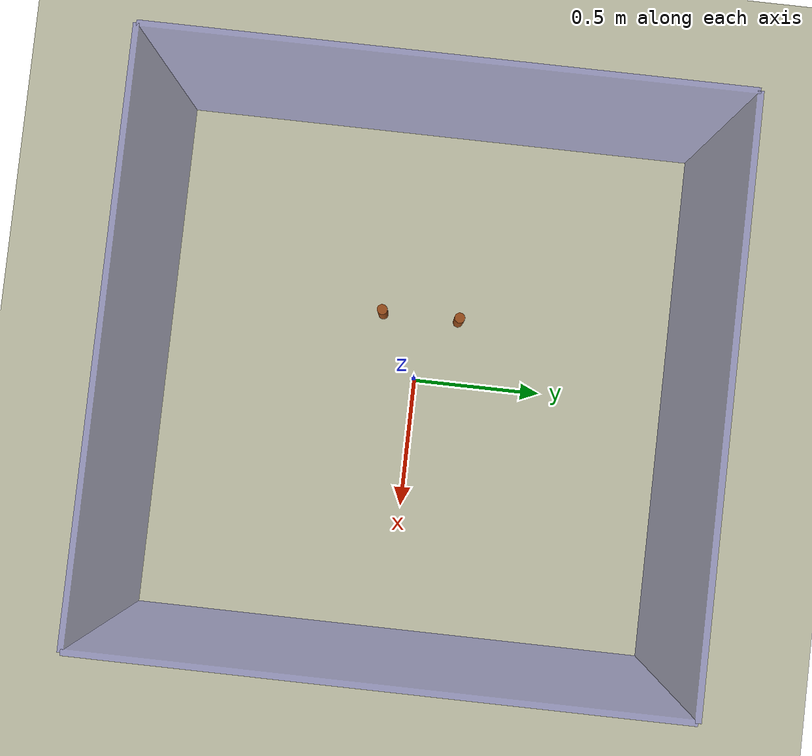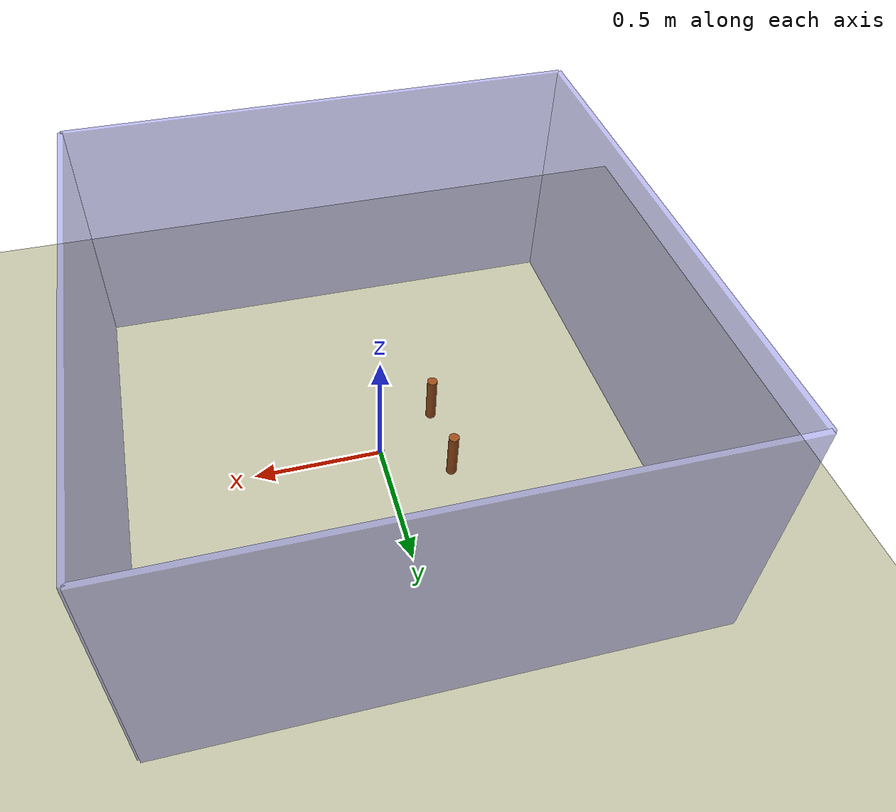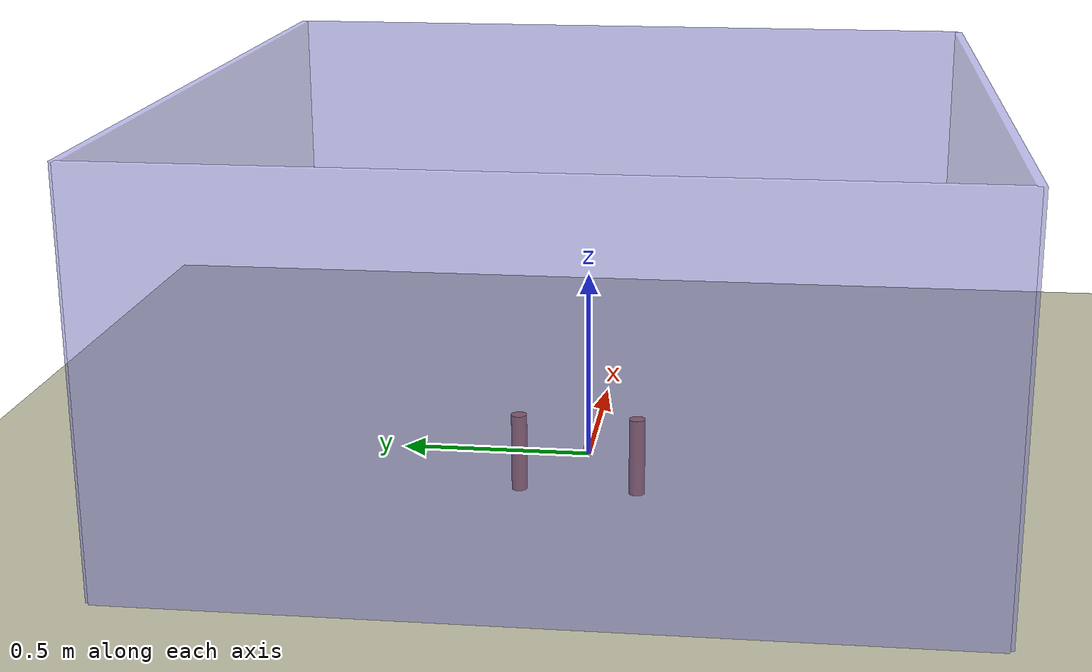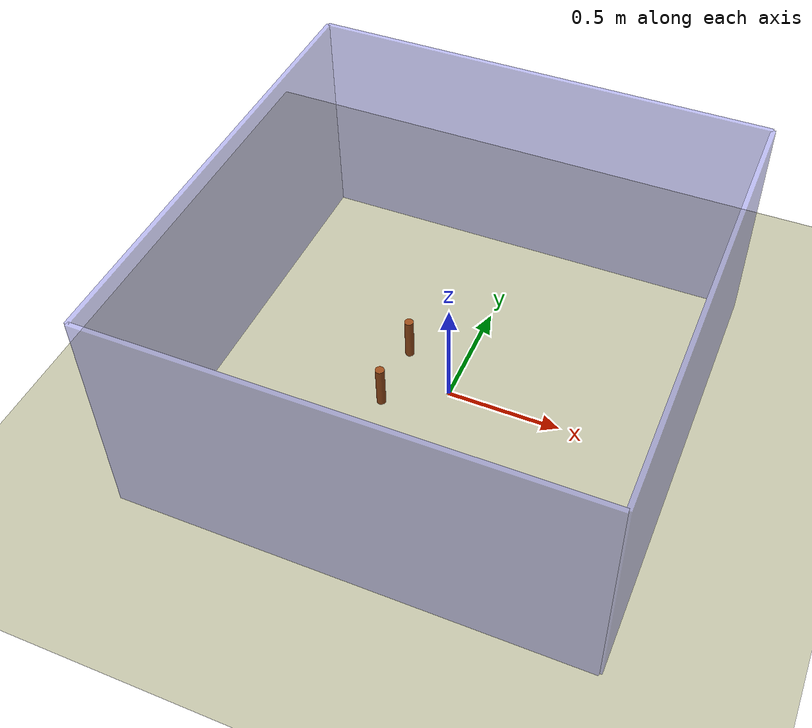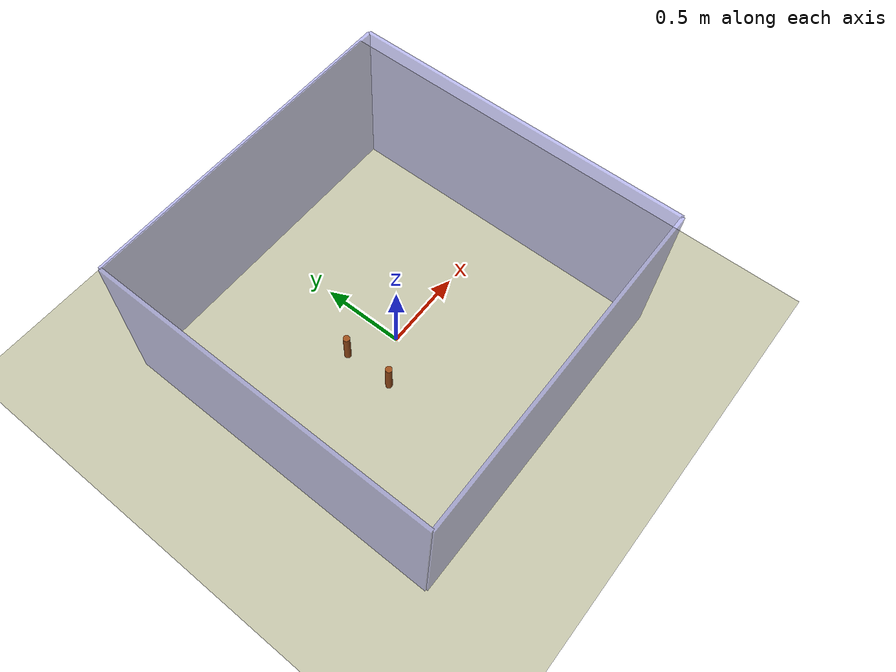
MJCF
<?xml version="1.0" encoding="utf-8"?>
<!-- MuJoCo arena for Drosophila odor-plume navigation -->
<mujoco model="fly_arena">
  <option timestep="0.002" gravity="0 0 -9.81"/>

  <!-- Default contact properties for realistic friction -->
  <default>
    <geom friction="1.0 0.005 0.0001" condim="4"/>
  </default>

  <worldbody>
    <!-- Arena floor: physical, collideable, with friction -->
    <geom name="floor" type="plane" size="2 2 0.1" pos="0 0 0"
          rgba="0.75 0.75 0.65 1" conaffinity="1" condim="4"
          friction="1.0 0.005 0.0001"/>

    <!-- Wind-tunnel walls: physical collideable barriers -->
    <geom name="wall_upwind"   type="box" size="0.01 1.0 0.5" pos="-1.0 0 0.5"
          rgba="0.5 0.5 0.9 0.5" conaffinity="1" condim="3"/>
    <geom name="wall_downwind" type="box" size="0.01 1.0 0.5" pos=" 1.0 0 0.5"
          rgba="0.5 0.5 0.9 0.5" conaffinity="1" condim="3"/>
    <geom name="wall_left"  type="box" size="1.0 0.01 0.5" pos="0  1.0 0.5"
          rgba="0.5 0.5 0.9 0.5" conaffinity="1" condim="3"/>
    <geom name="wall_right" type="box" size="1.0 0.01 0.5" pos="0 -1.0 0.5"
          rgba="0.5 0.5 0.9 0.5" conaffinity="1" condim="3"/>

    <!-- Odor source: static sphere at arena origin; physical so fly can detect contact -->
    <!-- source_position=zeros in OdorPlume matches this position -->
    <geom name="source" type="sphere" size="0.015" pos="0 0 0.015"
          rgba="1.0 0.3 0.0 1" conaffinity="1" condim="1"
          friction="0.1 0.005 0.0001"/>

    <!-- Obstacle cylinders: physical, collideable -->
    <!-- Positions match OBSTACLES_XY in save_trajectory_video() -->
    <geom name="obstacle_1" type="cylinder" size="0.02 0.1" pos="-0.25  0.15 0.1"
          rgba="0.6 0.3 0.1 1" conaffinity="1" condim="3"/>
    <geom name="obstacle_2" type="cylinder" size="0.02 0.1" pos="-0.25 -0.15 0.1"
          rgba="0.6 0.3 0.1 1" conaffinity="1" condim="3"/>

    <!-- Fly body included via flybody MJCF (Phase 3c) -->

  </worldbody>

  <sensor>
    <!-- Antennae position sensors — updated when flybody MJCF is included -->
    <framepos name="antenna_left"  objtype="site" objname="antenna_left_site"/>
    <framepos name="antenna_right" objtype="site" objname="antenna_right_site"/>
  </sensor>
</mujoco>
